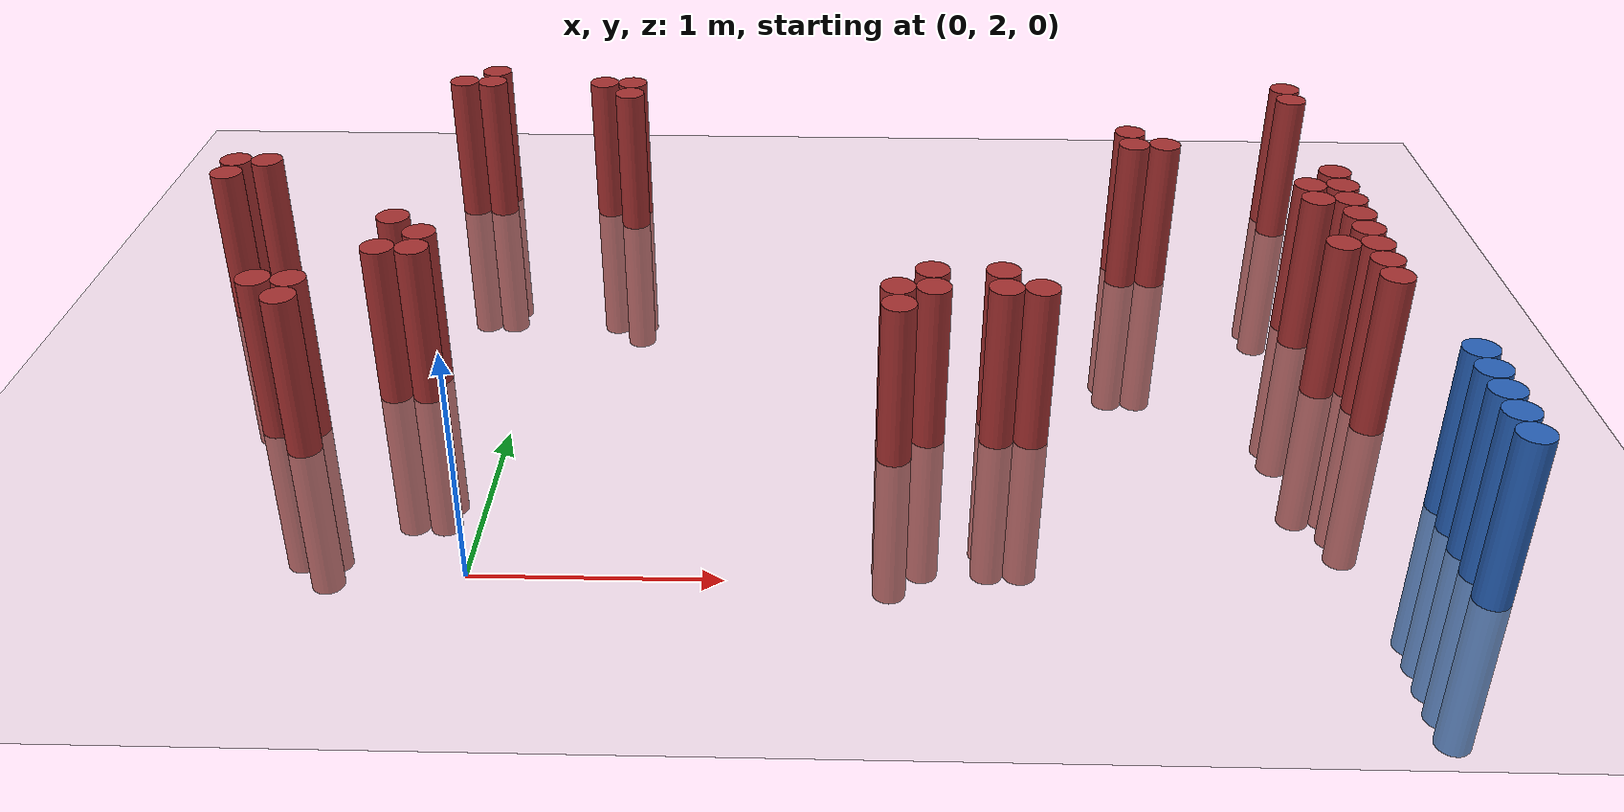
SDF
<sdf version="1.6">
 <world name="default">
  <model name="ground_plane">
   <static>1</static>
   <link name="link">
    <collision name="collision">
     <geometry><plane><normal>0 0 1</normal><size>100 100</size></plane></geometry>
     <surface><friction><ode><mu>100</mu><mu2>50</mu2></ode></friction></surface>
    </collision>
    <visual name="visual">
     <cast_shadows>0</cast_shadows>
     <geometry><plane><normal>0 0 1</normal><size>100 100</size></plane></geometry>
     <material>
      <script><uri>file://media/materials/scripts/gazebo.material</uri><name>Gazebo/Grey</name></script>
     </material>
    </visual>
   </link>
  </model>
  <model name="unit_cylinder_140">
   <static>1</static>
   <pose>3.925000 1.975000 0.000000 0.000000 0.000000 0.000000</pose>
   <link name="link">
    <inertial>
     <mass>1</mass>
     <inertia><ixx>0.145833</ixx><ixy>0</ixy><ixz>0</ixz><iyy>0.145833</iyy><iyz>0</iyz><izz>0.125</izz></inertia>
    </inertial>
    <collision name="collision">
     <geometry><cylinder><radius>0.075000</radius><length>1.5</length></cylinder></geometry>
    </collision>
    <visual name="visual">
     <geometry><cylinder><radius>0.075000</radius><length>1.5</length></cylinder></geometry>
     <material>
      <ambient>0.152000 0.379000 0.720000 1</ambient>
      <diffuse>0.152000 0.379000 0.720000 1</diffuse>
     </material>
     <material>
      <script><name>Gazebo/Grey</name><uri>file://media/materials/scripts/gazebo.material</uri></script>
     </material>
    </visual>
   </link>
  </model>
  <model name="unit_cylinder_142">
   <static>1</static>
   <pose>3.925000 2.125000 0.000000 0.000000 0.000000 0.000000</pose>
   <link name="link">
    <inertial>
     <mass>1</mass>
     <inertia><ixx>0.145833</ixx><ixy>0</ixy><ixz>0</ixz><iyy>0.145833</iyy><iyz>0</iyz><izz>0.125</izz></inertia>
    </inertial>
    <collision name="collision">
     <geometry><cylinder><radius>0.075000</radius><length>1.5</length></cylinder></geometry>
    </collision>
    <visual name="visual">
     <geometry><cylinder><radius>0.075000</radius><length>1.5</length></cylinder></geometry>
     <material>
      <ambient>0.152000 0.379000 0.720000 1</ambient>
      <diffuse>0.152000 0.379000 0.720000 1</diffuse>
     </material>
     <material>
      <script><name>Gazebo/Grey</name><uri>file://media/materials/scripts/gazebo.material</uri></script>
     </material>
    </visual>
   </link>
  </model>
  <model name="unit_cylinder_144">
   <static>1</static>
   <pose>3.925000 2.275000 0.000000 0.000000 0.000000 0.000000</pose>
   <link name="link">
    <inertial>
     <mass>1</mass>
     <inertia><ixx>0.145833</ixx><ixy>0</ixy><ixz>0</ixz><iyy>0.145833</iyy><iyz>0</iyz><izz>0.125</izz></inertia>
    </inertial>
    <collision name="collision">
     <geometry><cylinder><radius>0.075000</radius><length>1.5</length></cylinder></geometry>
    </collision>
    <visual name="visual">
     <geometry><cylinder><radius>0.075000</radius><length>1.5</length></cylinder></geometry>
     <material>
      <ambient>0.152000 0.379000 0.720000 1</ambient>
      <diffuse>0.152000 0.379000 0.720000 1</diffuse>
     </material>
     <material>
      <script><name>Gazebo/Grey</name><uri>file://media/materials/scripts/gazebo.material</uri></script>
     </material>
    </visual>
   </link>
  </model>
  <model name="unit_cylinder_146">
   <static>1</static>
   <pose>3.925000 2.425000 0.000000 0.000000 0.000000 0.000000</pose>
   <link name="link">
    <inertial>
     <mass>1</mass>
     <inertia><ixx>0.145833</ixx><ixy>0</ixy><ixz>0</ixz><iyy>0.145833</iyy><iyz>0</iyz><izz>0.125</izz></inertia>
    </inertial>
    <collision name="collision">
     <geometry><cylinder><radius>0.075000</radius><length>1.5</length></cylinder></geometry>
    </collision>
    <visual name="visual">
     <geometry><cylinder><radius>0.075000</radius><length>1.5</length></cylinder></geometry>
     <material>
      <ambient>0.152000 0.379000 0.720000 1</ambient>
      <diffuse>0.152000 0.379000 0.720000 1</diffuse>
     </material>
     <material>
      <script><name>Gazebo/Grey</name><uri>file://media/materials/scripts/gazebo.material</uri></script>
     </material>
    </visual>
   </link>
  </model>
  <model name="unit_cylinder_148">
   <static>1</static>
   <pose>3.925000 2.575000 0.000000 0.000000 0.000000 0.000000</pose>
   <link name="link">
    <inertial>
     <mass>1</mass>
     <inertia><ixx>0.145833</ixx><ixy>0</ixy><ixz>0</ixz><iyy>0.145833</iyy><iyz>0</iyz><izz>0.125</izz></inertia>
    </inertial>
    <collision name="collision">
     <geometry><cylinder><radius>0.075000</radius><length>1.5</length></cylinder></geometry>
    </collision>
    <visual name="visual">
     <geometry><cylinder><radius>0.075000</radius><length>1.5</length></cylinder></geometry>
     <material>
      <ambient>0.152000 0.379000 0.720000 1</ambient>
      <diffuse>0.152000 0.379000 0.720000 1</diffuse>
     </material>
     <material>
      <script><name>Gazebo/Grey</name><uri>file://media/materials/scripts/gazebo.material</uri></script>
     </material>
    </visual>
   </link>
  </model>
  <model name="unit_cylinder_291">
   <static>1</static>
   <pose>-1.475000 4.075000 0.000000 0.000000 0.000000 0.000000</pose>
   <link name="link">
    <inertial>
     <mass>1</mass>
     <inertia><ixx>0.145833</ixx><ixy>0</ixy><ixz>0</ixz><iyy>0.145833</iyy><iyz>0</iyz><izz>0.125</izz></inertia>
    </inertial>
    <collision name="collision">
     <geometry><cylinder><radius>0.075000</radius><length>1.5</length></cylinder></geometry>
    </collision>
    <visual name="visual">
     <geometry><cylinder><radius>0.075000</radius><length>1.5</length></cylinder></geometry>
     <material>
      <ambient>0.648000 0.192000 0.192000 1</ambient>
      <diffuse>0.648000 0.192000 0.192000 1</diffuse>
     </material>
     <material>
      <script><name>Gazebo/Grey</name><uri>file://media/materials/scripts/gazebo.material</uri></script>
     </material>
    </visual>
   </link>
  </model>
  <model name="unit_cylinder_292">
   <static>1</static>
   <pose>-1.475000 4.225000 0.000000 0.000000 0.000000 0.000000</pose>
   <link name="link">
    <inertial>
     <mass>1</mass>
     <inertia><ixx>0.145833</ixx><ixy>0</ixy><ixz>0</ixz><iyy>0.145833</iyy><iyz>0</iyz><izz>0.125</izz></inertia>
    </inertial>
    <collision name="collision">
     <geometry><cylinder><radius>0.075000</radius><length>1.5</length></cylinder></geometry>
    </collision>
    <visual name="visual">
     <geometry><cylinder><radius>0.075000</radius><length>1.5</length></cylinder></geometry>
     <material>
      <ambient>0.648000 0.192000 0.192000 1</ambient>
      <diffuse>0.648000 0.192000 0.192000 1</diffuse>
     </material>
     <material>
      <script><name>Gazebo/Grey</name><uri>file://media/materials/scripts/gazebo.material</uri></script>
     </material>
    </visual>
   </link>
  </model>
  <model name="unit_cylinder_296">
   <static>1</static>
   <pose>-1.325000 4.225000 0.000000 0.000000 0.000000 0.000000</pose>
   <link name="link">
    <inertial>
     <mass>1</mass>
     <inertia><ixx>0.145833</ixx><ixy>0</ixy><ixz>0</ixz><iyy>0.145833</iyy><iyz>0</iyz><izz>0.125</izz></inertia>
    </inertial>
    <collision name="collision">
     <geometry><cylinder><radius>0.075000</radius><length>1.5</length></cylinder></geometry>
    </collision>
    <visual name="visual">
     <geometry><cylinder><radius>0.075000</radius><length>1.5</length></cylinder></geometry>
     <material>
      <ambient>0.648000 0.192000 0.192000 1</ambient>
      <diffuse>0.648000 0.192000 0.192000 1</diffuse>
     </material>
     <material>
      <script><name>Gazebo/Grey</name><uri>file://media/materials/scripts/gazebo.material</uri></script>
     </material>
    </visual>
   </link>
  </model>
  <model name="unit_cylinder_300">
   <static>1</static>
   <pose>-1.025000 3.025000 0.000000 0.000000 0.000000 0.000000</pose>
   <link name="link">
    <inertial>
     <mass>1</mass>
     <inertia><ixx>0.145833</ixx><ixy>0</ixy><ixz>0</ixz><iyy>0.145833</iyy><iyz>0</iyz><izz>0.125</izz></inertia>
    </inertial>
    <collision name="collision">
     <geometry><cylinder><radius>0.075000</radius><length>1.5</length></cylinder></geometry>
    </collision>
    <visual name="visual">
     <geometry><cylinder><radius>0.075000</radius><length>1.5</length></cylinder></geometry>
     <material>
      <ambient>0.648000 0.192000 0.192000 1</ambient>
      <diffuse>0.648000 0.192000 0.192000 1</diffuse>
     </material>
     <material>
      <script><name>Gazebo/Grey</name><uri>file://media/materials/scripts/gazebo.material</uri></script>
     </material>
    </visual>
   </link>
  </model>
  <model name="unit_cylinder_301">
   <static>1</static>
   <pose>-0.875000 2.875000 0.000000 0.000000 0.000000 0.000000</pose>
   <link name="link">
    <inertial>
     <mass>1</mass>
     <inertia><ixx>0.145833</ixx><ixy>0</ixy><ixz>0</ixz><iyy>0.145833</iyy><iyz>0</iyz><izz>0.125</izz></inertia>
    </inertial>
    <collision name="collision">
     <geometry><cylinder><radius>0.075000</radius><length>1.5</length></cylinder></geometry>
    </collision>
    <visual name="visual">
     <geometry><cylinder><radius>0.075000</radius><length>1.5</length></cylinder></geometry>
     <material>
      <ambient>0.648000 0.192000 0.192000 1</ambient>
      <diffuse>0.648000 0.192000 0.192000 1</diffuse>
     </material>
     <material>
      <script><name>Gazebo/Grey</name><uri>file://media/materials/scripts/gazebo.material</uri></script>
     </material>
    </visual>
   </link>
  </model>
  <model name="unit_cylinder_302">
   <static>1</static>
   <pose>-0.875000 3.025000 0.000000 0.000000 0.000000 0.000000</pose>
   <link name="link">
    <inertial>
     <mass>1</mass>
     <inertia><ixx>0.145833</ixx><ixy>0</ixy><ixz>0</ixz><iyy>0.145833</iyy><iyz>0</iyz><izz>0.125</izz></inertia>
    </inertial>
    <collision name="collision">
     <geometry><cylinder><radius>0.075000</radius><length>1.5</length></cylinder></geometry>
    </collision>
    <visual name="visual">
     <geometry><cylinder><radius>0.075000</radius><length>1.5</length></cylinder></geometry>
     <material>
      <ambient>0.648000 0.192000 0.192000 1</ambient>
      <diffuse>0.648000 0.192000 0.192000 1</diffuse>
     </material>
     <material>
      <script><name>Gazebo/Grey</name><uri>file://media/materials/scripts/gazebo.material</uri></script>
     </material>
    </visual>
   </link>
  </model>
  <model name="unit_cylinder_303">
   <static>1</static>
   <pose>-0.575000 3.325000 0.000000 0.000000 0.000000 0.000000</pose>
   <link name="link">
    <inertial>
     <mass>1</mass>
     <inertia><ixx>0.145833</ixx><ixy>0</ixy><ixz>0</ixz><iyy>0.145833</iyy><iyz>0</iyz><izz>0.125</izz></inertia>
    </inertial>
    <collision name="collision">
     <geometry><cylinder><radius>0.075000</radius><length>1.5</length></cylinder></geometry>
    </collision>
    <visual name="visual">
     <geometry><cylinder><radius>0.075000</radius><length>1.5</length></cylinder></geometry>
     <material>
      <ambient>0.648000 0.192000 0.192000 1</ambient>
      <diffuse>0.648000 0.192000 0.192000 1</diffuse>
     </material>
     <material>
      <script><name>Gazebo/Grey</name><uri>file://media/materials/scripts/gazebo.material</uri></script>
     </material>
    </visual>
   </link>
  </model>
  <model name="unit_cylinder_304">
   <static>1</static>
   <pose>-0.575000 3.625000 0.000000 0.000000 0.000000 0.000000</pose>
   <link name="link">
    <inertial>
     <mass>1</mass>
     <inertia><ixx>0.145833</ixx><ixy>0</ixy><ixz>0</ixz><iyy>0.145833</iyy><iyz>0</iyz><izz>0.125</izz></inertia>
    </inertial>
    <collision name="collision">
     <geometry><cylinder><radius>0.075000</radius><length>1.5</length></cylinder></geometry>
    </collision>
    <visual name="visual">
     <geometry><cylinder><radius>0.075000</radius><length>1.5</length></cylinder></geometry>
     <material>
      <ambient>0.648000 0.192000 0.192000 1</ambient>
      <diffuse>0.648000 0.192000 0.192000 1</diffuse>
     </material>
     <material>
      <script><name>Gazebo/Grey</name><uri>file://media/materials/scripts/gazebo.material</uri></script>
     </material>
    </visual>
   </link>
  </model>
  <model name="unit_cylinder_305">
   <static>1</static>
   <pose>-0.575000 5.275000 0.000000 0.000000 0.000000 0.000000</pose>
   <link name="link">
    <inertial>
     <mass>1</mass>
     <inertia><ixx>0.145833</ixx><ixy>0</ixy><ixz>0</ixz><iyy>0.145833</iyy><iyz>0</iyz><izz>0.125</izz></inertia>
    </inertial>
    <collision name="collision">
     <geometry><cylinder><radius>0.075000</radius><length>1.5</length></cylinder></geometry>
    </collision>
    <visual name="visual">
     <geometry><cylinder><radius>0.075000</radius><length>1.5</length></cylinder></geometry>
     <material>
      <ambient>0.648000 0.192000 0.192000 1</ambient>
      <diffuse>0.648000 0.192000 0.192000 1</diffuse>
     </material>
     <material>
      <script><name>Gazebo/Grey</name><uri>file://media/materials/scripts/gazebo.material</uri></script>
     </material>
    </visual>
   </link>
  </model>
  <model name="unit_cylinder_306">
   <static>1</static>
   <pose>-0.425000 3.325000 0.000000 0.000000 0.000000 0.000000</pose>
   <link name="link">
    <inertial>
     <mass>1</mass>
     <inertia><ixx>0.145833</ixx><ixy>0</ixy><ixz>0</ixz><iyy>0.145833</iyy><iyz>0</iyz><izz>0.125</izz></inertia>
    </inertial>
    <collision name="collision">
     <geometry><cylinder><radius>0.075000</radius><length>1.5</length></cylinder></geometry>
    </collision>
    <visual name="visual">
     <geometry><cylinder><radius>0.075000</radius><length>1.5</length></cylinder></geometry>
     <material>
      <ambient>0.648000 0.192000 0.192000 1</ambient>
      <diffuse>0.648000 0.192000 0.192000 1</diffuse>
     </material>
     <material>
      <script><name>Gazebo/Grey</name><uri>file://media/materials/scripts/gazebo.material</uri></script>
     </material>
    </visual>
   </link>
  </model>
  <model name="unit_cylinder_307">
   <static>1</static>
   <pose>-0.425000 3.475000 0.000000 0.000000 0.000000 0.000000</pose>
   <link name="link">
    <inertial>
     <mass>1</mass>
     <inertia><ixx>0.145833</ixx><ixy>0</ixy><ixz>0</ixz><iyy>0.145833</iyy><iyz>0</iyz><izz>0.125</izz></inertia>
    </inertial>
    <collision name="collision">
     <geometry><cylinder><radius>0.075000</radius><length>1.5</length></cylinder></geometry>
    </collision>
    <visual name="visual">
     <geometry><cylinder><radius>0.075000</radius><length>1.5</length></cylinder></geometry>
     <material>
      <ambient>0.648000 0.192000 0.192000 1</ambient>
      <diffuse>0.648000 0.192000 0.192000 1</diffuse>
     </material>
     <material>
      <script><name>Gazebo/Grey</name><uri>file://media/materials/scripts/gazebo.material</uri></script>
     </material>
    </visual>
   </link>
  </model>
  <model name="unit_cylinder_308">
   <static>1</static>
   <pose>-0.425000 5.275000 0.000000 0.000000 0.000000 0.000000</pose>
   <link name="link">
    <inertial>
     <mass>1</mass>
     <inertia><ixx>0.145833</ixx><ixy>0</ixy><ixz>0</ixz><iyy>0.145833</iyy><iyz>0</iyz><izz>0.125</izz></inertia>
    </inertial>
    <collision name="collision">
     <geometry><cylinder><radius>0.075000</radius><length>1.5</length></cylinder></geometry>
    </collision>
    <visual name="visual">
     <geometry><cylinder><radius>0.075000</radius><length>1.5</length></cylinder></geometry>
     <material>
      <ambient>0.648000 0.192000 0.192000 1</ambient>
      <diffuse>0.648000 0.192000 0.192000 1</diffuse>
     </material>
     <material>
      <script><name>Gazebo/Grey</name><uri>file://media/materials/scripts/gazebo.material</uri></script>
     </material>
    </visual>
   </link>
  </model>
  <model name="unit_cylinder_309">
   <static>1</static>
   <pose>-0.425000 5.425000 0.000000 0.000000 0.000000 0.000000</pose>
   <link name="link">
    <inertial>
     <mass>1</mass>
     <inertia><ixx>0.145833</ixx><ixy>0</ixy><ixz>0</ixz><iyy>0.145833</iyy><iyz>0</iyz><izz>0.125</izz></inertia>
    </inertial>
    <collision name="collision">
     <geometry><cylinder><radius>0.075000</radius><length>1.5</length></cylinder></geometry>
    </collision>
    <visual name="visual">
     <geometry><cylinder><radius>0.075000</radius><length>1.5</length></cylinder></geometry>
     <material>
      <ambient>0.648000 0.192000 0.192000 1</ambient>
      <diffuse>0.648000 0.192000 0.192000 1</diffuse>
     </material>
     <material>
      <script><name>Gazebo/Grey</name><uri>file://media/materials/scripts/gazebo.material</uri></script>
     </material>
    </visual>
   </link>
  </model>
  <model name="unit_cylinder_310">
   <static>1</static>
   <pose>0.175000 5.275000 0.000000 0.000000 0.000000 0.000000</pose>
   <link name="link">
    <inertial>
     <mass>1</mass>
     <inertia><ixx>0.145833</ixx><ixy>0</ixy><ixz>0</ixz><iyy>0.145833</iyy><iyz>0</iyz><izz>0.125</izz></inertia>
    </inertial>
    <collision name="collision">
     <geometry><cylinder><radius>0.075000</radius><length>1.5</length></cylinder></geometry>
    </collision>
    <visual name="visual">
     <geometry><cylinder><radius>0.075000</radius><length>1.5</length></cylinder></geometry>
     <material>
      <ambient>0.648000 0.192000 0.192000 1</ambient>
      <diffuse>0.648000 0.192000 0.192000 1</diffuse>
     </material>
     <material>
      <script><name>Gazebo/Grey</name><uri>file://media/materials/scripts/gazebo.material</uri></script>
     </material>
    </visual>
   </link>
  </model>
  <model name="unit_cylinder_311">
   <static>1</static>
   <pose>0.325000 5.125000 0.000000 0.000000 0.000000 0.000000</pose>
   <link name="link">
    <inertial>
     <mass>1</mass>
     <inertia><ixx>0.145833</ixx><ixy>0</ixy><ixz>0</ixz><iyy>0.145833</iyy><iyz>0</iyz><izz>0.125</izz></inertia>
    </inertial>
    <collision name="collision">
     <geometry><cylinder><radius>0.075000</radius><length>1.5</length></cylinder></geometry>
    </collision>
    <visual name="visual">
     <geometry><cylinder><radius>0.075000</radius><length>1.5</length></cylinder></geometry>
     <material>
      <ambient>0.648000 0.192000 0.192000 1</ambient>
      <diffuse>0.648000 0.192000 0.192000 1</diffuse>
     </material>
     <material>
      <script><name>Gazebo/Grey</name><uri>file://media/materials/scripts/gazebo.material</uri></script>
     </material>
    </visual>
   </link>
  </model>
  <model name="unit_cylinder_312">
   <static>1</static>
   <pose>0.325000 5.275000 0.000000 0.000000 0.000000 0.000000</pose>
   <link name="link">
    <inertial>
     <mass>1</mass>
     <inertia><ixx>0.145833</ixx><ixy>0</ixy><ixz>0</ixz><iyy>0.145833</iyy><iyz>0</iyz><izz>0.125</izz></inertia>
    </inertial>
    <collision name="collision">
     <geometry><cylinder><radius>0.075000</radius><length>1.5</length></cylinder></geometry>
    </collision>
    <visual name="visual">
     <geometry><cylinder><radius>0.075000</radius><length>1.5</length></cylinder></geometry>
     <material>
      <ambient>0.648000 0.192000 0.192000 1</ambient>
      <diffuse>0.648000 0.192000 0.192000 1</diffuse>
     </material>
     <material>
      <script><name>Gazebo/Grey</name><uri>file://media/materials/scripts/gazebo.material</uri></script>
     </material>
    </visual>
   </link>
  </model>
  <model name="unit_cylinder_330">
   <static>1</static>
   <pose>1.675000 2.875000 0.000000 0.000000 0.000000 0.000000</pose>
   <link name="link">
    <inertial>
     <mass>1</mass>
     <inertia><ixx>0.145833</ixx><ixy>0</ixy><ixz>0</ixz><iyy>0.145833</iyy><iyz>0</iyz><izz>0.125</izz></inertia>
    </inertial>
    <collision name="collision">
     <geometry><cylinder><radius>0.075000</radius><length>1.5</length></cylinder></geometry>
    </collision>
    <visual name="visual">
     <geometry><cylinder><radius>0.075000</radius><length>1.5</length></cylinder></geometry>
     <material>
      <ambient>0.648000 0.192000 0.192000 1</ambient>
      <diffuse>0.648000 0.192000 0.192000 1</diffuse>
     </material>
     <material>
      <script><name>Gazebo/Grey</name><uri>file://media/materials/scripts/gazebo.material</uri></script>
     </material>
    </visual>
   </link>
  </model>
  <model name="unit_cylinder_331">
   <static>1</static>
   <pose>1.675000 3.025000 0.000000 0.000000 0.000000 0.000000</pose>
   <link name="link">
    <inertial>
     <mass>1</mass>
     <inertia><ixx>0.145833</ixx><ixy>0</ixy><ixz>0</ixz><iyy>0.145833</iyy><iyz>0</iyz><izz>0.125</izz></inertia>
    </inertial>
    <collision name="collision">
     <geometry><cylinder><radius>0.075000</radius><length>1.5</length></cylinder></geometry>
    </collision>
    <visual name="visual">
     <geometry><cylinder><radius>0.075000</radius><length>1.5</length></cylinder></geometry>
     <material>
      <ambient>0.648000 0.192000 0.192000 1</ambient>
      <diffuse>0.648000 0.192000 0.192000 1</diffuse>
     </material>
     <material>
      <script><name>Gazebo/Grey</name><uri>file://media/materials/scripts/gazebo.material</uri></script>
     </material>
    </visual>
   </link>
  </model>
  <model name="unit_cylinder_334">
   <static>1</static>
   <pose>1.825000 3.025000 0.000000 0.000000 0.000000 0.000000</pose>
   <link name="link">
    <inertial>
     <mass>1</mass>
     <inertia><ixx>0.145833</ixx><ixy>0</ixy><ixz>0</ixz><iyy>0.145833</iyy><iyz>0</iyz><izz>0.125</izz></inertia>
    </inertial>
    <collision name="collision">
     <geometry><cylinder><radius>0.075000</radius><length>1.5</length></cylinder></geometry>
    </collision>
    <visual name="visual">
     <geometry><cylinder><radius>0.075000</radius><length>1.5</length></cylinder></geometry>
     <material>
      <ambient>0.648000 0.192000 0.192000 1</ambient>
      <diffuse>0.648000 0.192000 0.192000 1</diffuse>
     </material>
     <material>
      <script><name>Gazebo/Grey</name><uri>file://media/materials/scripts/gazebo.material</uri></script>
     </material>
    </visual>
   </link>
  </model>
  <model name="unit_cylinder_335">
   <static>1</static>
   <pose>1.825000 3.175000 0.000000 0.000000 0.000000 0.000000</pose>
   <link name="link">
    <inertial>
     <mass>1</mass>
     <inertia><ixx>0.145833</ixx><ixy>0</ixy><ixz>0</ixz><iyy>0.145833</iyy><iyz>0</iyz><izz>0.125</izz></inertia>
    </inertial>
    <collision name="collision">
     <geometry><cylinder><radius>0.075000</radius><length>1.5</length></cylinder></geometry>
    </collision>
    <visual name="visual">
     <geometry><cylinder><radius>0.075000</radius><length>1.5</length></cylinder></geometry>
     <material>
      <ambient>0.648000 0.192000 0.192000 1</ambient>
      <diffuse>0.648000 0.192000 0.192000 1</diffuse>
     </material>
     <material>
      <script><name>Gazebo/Grey</name><uri>file://media/materials/scripts/gazebo.material</uri></script>
     </material>
    </visual>
   </link>
  </model>
  <model name="unit_cylinder_338">
   <static>1</static>
   <pose>2.125000 3.025000 0.000000 0.000000 0.000000 0.000000</pose>
   <link name="link">
    <inertial>
     <mass>1</mass>
     <inertia><ixx>0.145833</ixx><ixy>0</ixy><ixz>0</ixz><iyy>0.145833</iyy><iyz>0</iyz><izz>0.125</izz></inertia>
    </inertial>
    <collision name="collision">
     <geometry><cylinder><radius>0.075000</radius><length>1.5</length></cylinder></geometry>
    </collision>
    <visual name="visual">
     <geometry><cylinder><radius>0.075000</radius><length>1.5</length></cylinder></geometry>
     <material>
      <ambient>0.648000 0.192000 0.192000 1</ambient>
      <diffuse>0.648000 0.192000 0.192000 1</diffuse>
     </material>
     <material>
      <script><name>Gazebo/Grey</name><uri>file://media/materials/scripts/gazebo.material</uri></script>
     </material>
    </visual>
   </link>
  </model>
  <model name="unit_cylinder_339">
   <static>1</static>
   <pose>2.125000 3.175000 0.000000 0.000000 0.000000 0.000000</pose>
   <link name="link">
    <inertial>
     <mass>1</mass>
     <inertia><ixx>0.145833</ixx><ixy>0</ixy><ixz>0</ixz><iyy>0.145833</iyy><iyz>0</iyz><izz>0.125</izz></inertia>
    </inertial>
    <collision name="collision">
     <geometry><cylinder><radius>0.075000</radius><length>1.5</length></cylinder></geometry>
    </collision>
    <visual name="visual">
     <geometry><cylinder><radius>0.075000</radius><length>1.5</length></cylinder></geometry>
     <material>
      <ambient>0.648000 0.192000 0.192000 1</ambient>
      <diffuse>0.648000 0.192000 0.192000 1</diffuse>
     </material>
     <material>
      <script><name>Gazebo/Grey</name><uri>file://media/materials/scripts/gazebo.material</uri></script>
     </material>
    </visual>
   </link>
  </model>
  <model name="unit_cylinder_340">
   <static>1</static>
   <pose>2.275000 3.025000 0.000000 0.000000 0.000000 0.000000</pose>
   <link name="link">
    <inertial>
     <mass>1</mass>
     <inertia><ixx>0.145833</ixx><ixy>0</ixy><ixz>0</ixz><iyy>0.145833</iyy><iyz>0</iyz><izz>0.125</izz></inertia>
    </inertial>
    <collision name="collision">
     <geometry><cylinder><radius>0.075000</radius><length>1.5</length></cylinder></geometry>
    </collision>
    <visual name="visual">
     <geometry><cylinder><radius>0.075000</radius><length>1.5</length></cylinder></geometry>
     <material>
      <ambient>0.648000 0.192000 0.192000 1</ambient>
      <diffuse>0.648000 0.192000 0.192000 1</diffuse>
     </material>
     <material>
      <script><name>Gazebo/Grey</name><uri>file://media/materials/scripts/gazebo.material</uri></script>
     </material>
    </visual>
   </link>
  </model>
  <model name="unit_cylinder_351">
   <static>1</static>
   <pose>2.875000 4.525000 0.000000 0.000000 0.000000 0.000000</pose>
   <link name="link">
    <inertial>
     <mass>1</mass>
     <inertia><ixx>0.145833</ixx><ixy>0</ixy><ixz>0</ixz><iyy>0.145833</iyy><iyz>0</iyz><izz>0.125</izz></inertia>
    </inertial>
    <collision name="collision">
     <geometry><cylinder><radius>0.075000</radius><length>1.5</length></cylinder></geometry>
    </collision>
    <visual name="visual">
     <geometry><cylinder><radius>0.075000</radius><length>1.5</length></cylinder></geometry>
     <material>
      <ambient>0.648000 0.192000 0.192000 1</ambient>
      <diffuse>0.648000 0.192000 0.192000 1</diffuse>
     </material>
     <material>
      <script><name>Gazebo/Grey</name><uri>file://media/materials/scripts/gazebo.material</uri></script>
     </material>
    </visual>
   </link>
  </model>
  <model name="unit_cylinder_352">
   <static>1</static>
   <pose>2.875000 4.675000 0.000000 0.000000 0.000000 0.000000</pose>
   <link name="link">
    <inertial>
     <mass>1</mass>
     <inertia><ixx>0.145833</ixx><ixy>0</ixy><ixz>0</ixz><iyy>0.145833</iyy><iyz>0</iyz><izz>0.125</izz></inertia>
    </inertial>
    <collision name="collision">
     <geometry><cylinder><radius>0.075000</radius><length>1.5</length></cylinder></geometry>
    </collision>
    <visual name="visual">
     <geometry><cylinder><radius>0.075000</radius><length>1.5</length></cylinder></geometry>
     <material>
      <ambient>0.648000 0.192000 0.192000 1</ambient>
      <diffuse>0.648000 0.192000 0.192000 1</diffuse>
     </material>
     <material>
      <script><name>Gazebo/Grey</name><uri>file://media/materials/scripts/gazebo.material</uri></script>
     </material>
    </visual>
   </link>
  </model>
  <model name="unit_cylinder_356">
   <static>1</static>
   <pose>3.025000 4.525000 0.000000 0.000000 0.000000 0.000000</pose>
   <link name="link">
    <inertial>
     <mass>1</mass>
     <inertia><ixx>0.145833</ixx><ixy>0</ixy><ixz>0</ixz><iyy>0.145833</iyy><iyz>0</iyz><izz>0.125</izz></inertia>
    </inertial>
    <collision name="collision">
     <geometry><cylinder><radius>0.075000</radius><length>1.5</length></cylinder></geometry>
    </collision>
    <visual name="visual">
     <geometry><cylinder><radius>0.075000</radius><length>1.5</length></cylinder></geometry>
     <material>
      <ambient>0.648000 0.192000 0.192000 1</ambient>
      <diffuse>0.648000 0.192000 0.192000 1</diffuse>
     </material>
     <material>
      <script><name>Gazebo/Grey</name><uri>file://media/materials/scripts/gazebo.material</uri></script>
     </material>
    </visual>
   </link>
  </model>
  <model name="unit_cylinder_367">
   <static>1</static>
   <pose>3.625000 3.475000 0.000000 0.000000 0.000000 0.000000</pose>
   <link name="link">
    <inertial>
     <mass>1</mass>
     <inertia><ixx>0.145833</ixx><ixy>0</ixy><ixz>0</ixz><iyy>0.145833</iyy><iyz>0</iyz><izz>0.125</izz></inertia>
    </inertial>
    <collision name="collision">
     <geometry><cylinder><radius>0.075000</radius><length>1.5</length></cylinder></geometry>
    </collision>
    <visual name="visual">
     <geometry><cylinder><radius>0.075000</radius><length>1.5</length></cylinder></geometry>
     <material>
      <ambient>0.648000 0.192000 0.192000 1</ambient>
      <diffuse>0.648000 0.192000 0.192000 1</diffuse>
     </material>
     <material>
      <script><name>Gazebo/Grey</name><uri>file://media/materials/scripts/gazebo.material</uri></script>
     </material>
    </visual>
   </link>
  </model>
  <model name="unit_cylinder_368">
   <static>1</static>
   <pose>3.625000 3.925000 0.000000 0.000000 0.000000 0.000000</pose>
   <link name="link">
    <inertial>
     <mass>1</mass>
     <inertia><ixx>0.145833</ixx><ixy>0</ixy><ixz>0</ixz><iyy>0.145833</iyy><iyz>0</iyz><izz>0.125</izz></inertia>
    </inertial>
    <collision name="collision">
     <geometry><cylinder><radius>0.075000</radius><length>1.5</length></cylinder></geometry>
    </collision>
    <visual name="visual">
     <geometry><cylinder><radius>0.075000</radius><length>1.5</length></cylinder></geometry>
     <material>
      <ambient>0.648000 0.192000 0.192000 1</ambient>
      <diffuse>0.648000 0.192000 0.192000 1</diffuse>
     </material>
     <material>
      <script><name>Gazebo/Grey</name><uri>file://media/materials/scripts/gazebo.material</uri></script>
     </material>
    </visual>
   </link>
  </model>
  <model name="unit_cylinder_369">
   <static>1</static>
   <pose>3.625000 4.075000 0.000000 0.000000 0.000000 0.000000</pose>
   <link name="link">
    <inertial>
     <mass>1</mass>
     <inertia><ixx>0.145833</ixx><ixy>0</ixy><ixz>0</ixz><iyy>0.145833</iyy><iyz>0</iyz><izz>0.125</izz></inertia>
    </inertial>
    <collision name="collision">
     <geometry><cylinder><radius>0.075000</radius><length>1.5</length></cylinder></geometry>
    </collision>
    <visual name="visual">
     <geometry><cylinder><radius>0.075000</radius><length>1.5</length></cylinder></geometry>
     <material>
      <ambient>0.648000 0.192000 0.192000 1</ambient>
      <diffuse>0.648000 0.192000 0.192000 1</diffuse>
     </material>
     <material>
      <script><name>Gazebo/Grey</name><uri>file://media/materials/scripts/gazebo.material</uri></script>
     </material>
    </visual>
   </link>
  </model>
  <model name="unit_cylinder_380">
   <static>1</static>
   <pose>3.775000 3.175000 0.000000 0.000000 0.000000 0.000000</pose>
   <link name="link">
    <inertial>
     <mass>1</mass>
     <inertia><ixx>0.145833</ixx><ixy>0</ixy><ixz>0</ixz><iyy>0.145833</iyy><iyz>0</iyz><izz>0.125</izz></inertia>
    </inertial>
    <collision name="collision">
     <geometry><cylinder><radius>0.075000</radius><length>1.5</length></cylinder></geometry>
    </collision>
    <visual name="visual">
     <geometry><cylinder><radius>0.075000</radius><length>1.5</length></cylinder></geometry>
     <material>
      <ambient>0.648000 0.192000 0.192000 1</ambient>
      <diffuse>0.648000 0.192000 0.192000 1</diffuse>
     </material>
     <material>
      <script><name>Gazebo/Grey</name><uri>file://media/materials/scripts/gazebo.material</uri></script>
     </material>
    </visual>
   </link>
  </model>
  <model name="unit_cylinder_381">
   <static>1</static>
   <pose>3.775000 3.325000 0.000000 0.000000 0.000000 0.000000</pose>
   <link name="link">
    <inertial>
     <mass>1</mass>
     <inertia><ixx>0.145833</ixx><ixy>0</ixy><ixz>0</ixz><iyy>0.145833</iyy><iyz>0</iyz><izz>0.125</izz></inertia>
    </inertial>
    <collision name="collision">
     <geometry><cylinder><radius>0.075000</radius><length>1.5</length></cylinder></geometry>
    </collision>
    <visual name="visual">
     <geometry><cylinder><radius>0.075000</radius><length>1.5</length></cylinder></geometry>
     <material>
      <ambient>0.648000 0.192000 0.192000 1</ambient>
      <diffuse>0.648000 0.192000 0.192000 1</diffuse>
     </material>
     <material>
      <script><name>Gazebo/Grey</name><uri>file://media/materials/scripts/gazebo.material</uri></script>
     </material>
    </visual>
   </link>
  </model>
  <model name="unit_cylinder_382">
   <static>1</static>
   <pose>3.775000 3.475000 0.000000 0.000000 0.000000 0.000000</pose>
   <link name="link">
    <inertial>
     <mass>1</mass>
     <inertia><ixx>0.145833</ixx><ixy>0</ixy><ixz>0</ixz><iyy>0.145833</iyy><iyz>0</iyz><izz>0.125</izz></inertia>
    </inertial>
    <collision name="collision">
     <geometry><cylinder><radius>0.075000</radius><length>1.5</length></cylinder></geometry>
    </collision>
    <visual name="visual">
     <geometry><cylinder><radius>0.075000</radius><length>1.5</length></cylinder></geometry>
     <material>
      <ambient>0.648000 0.192000 0.192000 1</ambient>
      <diffuse>0.648000 0.192000 0.192000 1</diffuse>
     </material>
     <material>
      <script><name>Gazebo/Grey</name><uri>file://media/materials/scripts/gazebo.material</uri></script>
     </material>
    </visual>
   </link>
  </model>
  <model name="unit_cylinder_383">
   <static>1</static>
   <pose>3.775000 3.625000 0.000000 0.000000 0.000000 0.000000</pose>
   <link name="link">
    <inertial>
     <mass>1</mass>
     <inertia><ixx>0.145833</ixx><ixy>0</ixy><ixz>0</ixz><iyy>0.145833</iyy><iyz>0</iyz><izz>0.125</izz></inertia>
    </inertial>
    <collision name="collision">
     <geometry><cylinder><radius>0.075000</radius><length>1.5</length></cylinder></geometry>
    </collision>
    <visual name="visual">
     <geometry><cylinder><radius>0.075000</radius><length>1.5</length></cylinder></geometry>
     <material>
      <ambient>0.648000 0.192000 0.192000 1</ambient>
      <diffuse>0.648000 0.192000 0.192000 1</diffuse>
     </material>
     <material>
      <script><name>Gazebo/Grey</name><uri>file://media/materials/scripts/gazebo.material</uri></script>
     </material>
    </visual>
   </link>
  </model>
  <model name="unit_cylinder_384">
   <static>1</static>
   <pose>3.775000 3.775000 0.000000 0.000000 0.000000 0.000000</pose>
   <link name="link">
    <inertial>
     <mass>1</mass>
     <inertia><ixx>0.145833</ixx><ixy>0</ixy><ixz>0</ixz><iyy>0.145833</iyy><iyz>0</iyz><izz>0.125</izz></inertia>
    </inertial>
    <collision name="collision">
     <geometry><cylinder><radius>0.075000</radius><length>1.5</length></cylinder></geometry>
    </collision>
    <visual name="visual">
     <geometry><cylinder><radius>0.075000</radius><length>1.5</length></cylinder></geometry>
     <material>
      <ambient>0.648000 0.192000 0.192000 1</ambient>
      <diffuse>0.648000 0.192000 0.192000 1</diffuse>
     </material>
     <material>
      <script><name>Gazebo/Grey</name><uri>file://media/materials/scripts/gazebo.material</uri></script>
     </material>
    </visual>
   </link>
  </model>
  <model name="unit_cylinder_385">
   <static>1</static>
   <pose>3.775000 3.925000 0.000000 0.000000 0.000000 0.000000</pose>
   <link name="link">
    <inertial>
     <mass>1</mass>
     <inertia><ixx>0.145833</ixx><ixy>0</ixy><ixz>0</ixz><iyy>0.145833</iyy><iyz>0</iyz><izz>0.125</izz></inertia>
    </inertial>
    <collision name="collision">
     <geometry><cylinder><radius>0.075000</radius><length>1.5</length></cylinder></geometry>
    </collision>
    <visual name="visual">
     <geometry><cylinder><radius>0.075000</radius><length>1.5</length></cylinder></geometry>
     <material>
      <ambient>0.648000 0.192000 0.192000 1</ambient>
      <diffuse>0.648000 0.192000 0.192000 1</diffuse>
     </material>
     <material>
      <script><name>Gazebo/Grey</name><uri>file://media/materials/scripts/gazebo.material</uri></script>
     </material>
    </visual>
   </link>
  </model>
  <model name="unit_cylinder_386">
   <static>1</static>
   <pose>3.775000 4.075000 0.000000 0.000000 0.000000 0.000000</pose>
   <link name="link">
    <inertial>
     <mass>1</mass>
     <inertia><ixx>0.145833</ixx><ixy>0</ixy><ixz>0</ixz><iyy>0.145833</iyy><iyz>0</iyz><izz>0.125</izz></inertia>
    </inertial>
    <collision name="collision">
     <geometry><cylinder><radius>0.075000</radius><length>1.5</length></cylinder></geometry>
    </collision>
    <visual name="visual">
     <geometry><cylinder><radius>0.075000</radius><length>1.5</length></cylinder></geometry>
     <material>
      <ambient>0.648000 0.192000 0.192000 1</ambient>
      <diffuse>0.648000 0.192000 0.192000 1</diffuse>
     </material>
     <material>
      <script><name>Gazebo/Grey</name><uri>file://media/materials/scripts/gazebo.material</uri></script>
     </material>
    </visual>
   </link>
  </model>
  <model name="unit_cylinder_387">
   <static>1</static>
   <pose>3.775000 4.225000 0.000000 0.000000 0.000000 0.000000</pose>
   <link name="link">
    <inertial>
     <mass>1</mass>
     <inertia><ixx>0.145833</ixx><ixy>0</ixy><ixz>0</ixz><iyy>0.145833</iyy><iyz>0</iyz><izz>0.125</izz></inertia>
    </inertial>
    <collision name="collision">
     <geometry><cylinder><radius>0.075000</radius><length>1.5</length></cylinder></geometry>
    </collision>
    <visual name="visual">
     <geometry><cylinder><radius>0.075000</radius><length>1.5</length></cylinder></geometry>
     <material>
      <ambient>0.648000 0.192000 0.192000 1</ambient>
      <diffuse>0.648000 0.192000 0.192000 1</diffuse>
     </material>
     <material>
      <script><name>Gazebo/Grey</name><uri>file://media/materials/scripts/gazebo.material</uri></script>
     </material>
    </visual>
   </link>
  </model>
  <model name="unit_cylinder_388">
   <static>1</static>
   <pose>3.775000 5.125000 0.000000 0.000000 0.000000 0.000000</pose>
   <link name="link">
    <inertial>
     <mass>1</mass>
     <inertia><ixx>0.145833</ixx><ixy>0</ixy><ixz>0</ixz><iyy>0.145833</iyy><iyz>0</iyz><izz>0.125</izz></inertia>
    </inertial>
    <collision name="collision">
     <geometry><cylinder><radius>0.075000</radius><length>1.5</length></cylinder></geometry>
    </collision>
    <visual name="visual">
     <geometry><cylinder><radius>0.075000</radius><length>1.5</length></cylinder></geometry>
     <material>
      <ambient>0.648000 0.192000 0.192000 1</ambient>
      <diffuse>0.648000 0.192000 0.192000 1</diffuse>
     </material>
     <material>
      <script><name>Gazebo/Grey</name><uri>file://media/materials/scripts/gazebo.material</uri></script>
     </material>
    </visual>
   </link>
  </model>
  <model name="unit_cylinder_389">
   <static>1</static>
   <pose>3.775000 5.275000 0.000000 0.000000 0.000000 0.000000</pose>
   <link name="link">
    <inertial>
     <mass>1</mass>
     <inertia><ixx>0.145833</ixx><ixy>0</ixy><ixz>0</ixz><iyy>0.145833</iyy><iyz>0</iyz><izz>0.125</izz></inertia>
    </inertial>
    <collision name="collision">
     <geometry><cylinder><radius>0.075000</radius><length>1.5</length></cylinder></geometry>
    </collision>
    <visual name="visual">
     <geometry><cylinder><radius>0.075000</radius><length>1.5</length></cylinder></geometry>
     <material>
      <ambient>0.648000 0.192000 0.192000 1</ambient>
      <diffuse>0.648000 0.192000 0.192000 1</diffuse>
     </material>
     <material>
      <script><name>Gazebo/Grey</name><uri>file://media/materials/scripts/gazebo.material</uri></script>
     </material>
    </visual>
   </link>
  </model>
  <model name="unit_cylinder_416">
   <static>1</static>
   <pose>3.925000 1.975000 0.000000 0.000000 0.000000 0.000000</pose>
   <link name="link">
    <inertial>
     <mass>1</mass>
     <inertia><ixx>0.145833</ixx><ixy>0</ixy><ixz>0</ixz><iyy>0.145833</iyy><iyz>0</iyz><izz>0.125</izz></inertia>
    </inertial>
    <collision name="collision">
     <geometry><cylinder><radius>0.075000</radius><length>1.5</length></cylinder></geometry>
    </collision>
    <visual name="visual">
     <geometry><cylinder><radius>0.075000</radius><length>1.5</length></cylinder></geometry>
     <material>
      <ambient>0.152000 0.379000 0.720000 1</ambient>
      <diffuse>0.152000 0.379000 0.720000 1</diffuse>
     </material>
     <material>
      <script><name>Gazebo/Grey</name><uri>file://media/materials/scripts/gazebo.material</uri></script>
     </material>
    </visual>
   </link>
  </model>
  <model name="unit_cylinder_417">
   <static>1</static>
   <pose>3.925000 2.125000 0.000000 0.000000 0.000000 0.000000</pose>
   <link name="link">
    <inertial>
     <mass>1</mass>
     <inertia><ixx>0.145833</ixx><ixy>0</ixy><ixz>0</ixz><iyy>0.145833</iyy><iyz>0</iyz><izz>0.125</izz></inertia>
    </inertial>
    <collision name="collision">
     <geometry><cylinder><radius>0.075000</radius><length>1.5</length></cylinder></geometry>
    </collision>
    <visual name="visual">
     <geometry><cylinder><radius>0.075000</radius><length>1.5</length></cylinder></geometry>
     <material>
      <ambient>0.152000 0.379000 0.720000 1</ambient>
      <diffuse>0.152000 0.379000 0.720000 1</diffuse>
     </material>
     <material>
      <script><name>Gazebo/Grey</name><uri>file://media/materials/scripts/gazebo.material</uri></script>
     </material>
    </visual>
   </link>
  </model>
  <model name="unit_cylinder_418">
   <static>1</static>
   <pose>3.925000 2.275000 0.000000 0.000000 0.000000 0.000000</pose>
   <link name="link">
    <inertial>
     <mass>1</mass>
     <inertia><ixx>0.145833</ixx><ixy>0</ixy><ixz>0</ixz><iyy>0.145833</iyy><iyz>0</iyz><izz>0.125</izz></inertia>
    </inertial>
    <collision name="collision">
     <geometry><cylinder><radius>0.075000</radius><length>1.5</length></cylinder></geometry>
    </collision>
    <visual name="visual">
     <geometry><cylinder><radius>0.075000</radius><length>1.5</length></cylinder></geometry>
     <material>
      <ambient>0.152000 0.379000 0.720000 1</ambient>
      <diffuse>0.152000 0.379000 0.720000 1</diffuse>
     </material>
     <material>
      <script><name>Gazebo/Grey</name><uri>file://media/materials/scripts/gazebo.material</uri></script>
     </material>
    </visual>
   </link>
  </model>
  <model name="unit_cylinder_419">
   <static>1</static>
   <pose>3.925000 2.425000 0.000000 0.000000 0.000000 0.000000</pose>
   <link name="link">
    <inertial>
     <mass>1</mass>
     <inertia><ixx>0.145833</ixx><ixy>0</ixy><ixz>0</ixz><iyy>0.145833</iyy><iyz>0</iyz><izz>0.125</izz></inertia>
    </inertial>
    <collision name="collision">
     <geometry><cylinder><radius>0.075000</radius><length>1.5</length></cylinder></geometry>
    </collision>
    <visual name="visual">
     <geometry><cylinder><radius>0.075000</radius><length>1.5</length></cylinder></geometry>
     <material>
      <ambient>0.152000 0.379000 0.720000 1</ambient>
      <diffuse>0.152000 0.379000 0.720000 1</diffuse>
     </material>
     <material>
      <script><name>Gazebo/Grey</name><uri>file://media/materials/scripts/gazebo.material</uri></script>
     </material>
    </visual>
   </link>
  </model>
 </world>
</sdf>
